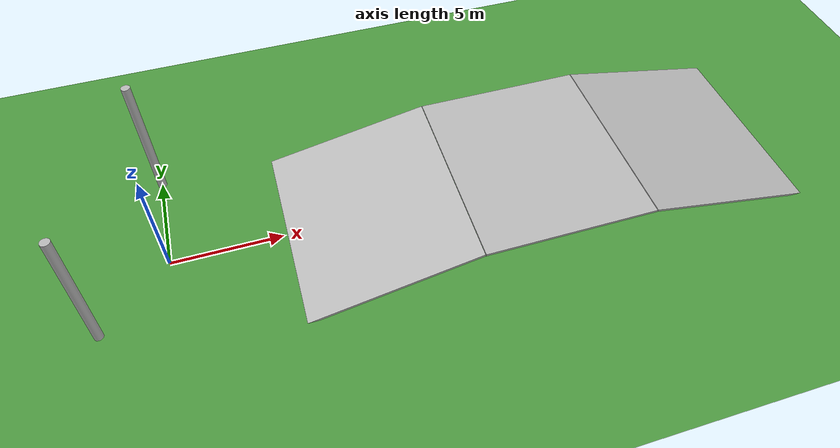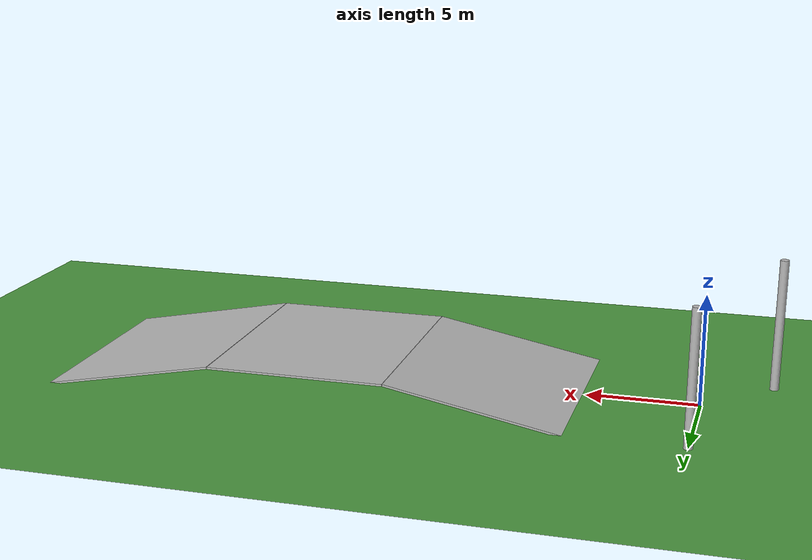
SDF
<sdf version="1.6">
 <world name="default">
  <light name="sun" type="directional">
   <pose>0 0 10 0 -0 0</pose>
   <diffuse>0.8 0.8 0.8 1</diffuse>
   <specular>0.2 0.2 0.2 1</specular>
   <attenuation>
    <range>1000</range>
    <constant>0.9</constant>
    <linear>0.01</linear>
    <quadratic>0.001</quadratic>
   </attenuation>
   <direction>-0.5 0.1 -0.9</direction>
  </light>
  <model name="ground_plane">
   <static>1</static>
   <link name="link">
    <collision name="collision">
     <geometry><plane><normal>0 0 1</normal><size>100 100</size></plane></geometry>
     <surface><friction><ode><mu>100</mu><mu2>50</mu2></ode></friction></surface>
    </collision>
    <visual name="visual">
     <cast_shadows>0</cast_shadows>
     <geometry><plane><normal>0 0 1</normal><size>100 100</size></plane></geometry>
     <material>
      <script><uri>model://materials/scripts</uri><uri>model://materials/textures</uri><name>grass</name></script>
     </material>
    </visual>
   </link>
  </model>
  <gravity>0 0 -9.8</gravity>
  <magnetic_field>6e-06 2.3e-05 -4.2e-05</magnetic_field>
  <atmosphere type="adiabatic"/>
  <physics name="default_physics" default="0" type="ode">
   <max_step_size>0.001</max_step_size>
   <real_time_factor>1</real_time_factor>
   <real_time_update_rate>1000</real_time_update_rate>
  </physics>
  <scene><ambient>0.4 0.4 0.4 1</ambient><background>0.7 0.7 0.7 1</background><shadows>1</shadows></scene>
  <audio><device>default</device></audio>
  <spherical_coordinates>
   <surface_model>EARTH_WGS84</surface_model>
   <latitude_deg>0</latitude_deg>
   <longitude_deg>0</longitude_deg>
   <elevation>0</elevation>
   <heading_deg>0</heading_deg>
  </spherical_coordinates>
  <model name="tree_1">
   <static>1</static>
   <pose>0 5 3 0 0 0</pose>
   <link name="link">
    <collision name="collision">
     <geometry><cylinder><radius>0.2</radius><length>6</length></cylinder></geometry>
     <surface><friction><ode><mu>0.6</mu><mu2>0.6</mu2></ode></friction></surface>
    </collision>
    <visual name="visual_1">
     <geometry><cylinder><radius>0.2</radius><length>6</length></cylinder></geometry>
     <material>
      <script><uri>model://materials/scripts</uri><uri>model://materials/textures</uri><name>bark</name></script>
     </material>
    </visual>
   </link>
  </model>
  <model name="tree_2">
   <static>1</static>
   <pose>-3 -3 3 0 0 0</pose>
   <link name="link">
    <collision name="collision">
     <geometry><cylinder><radius>0.2</radius><length>6</length></cylinder></geometry>
     <surface><friction><ode><mu>0.6</mu><mu2>0.6</mu2></ode></friction></surface>
    </collision>
    <visual name="visual_1">
     <geometry><cylinder><radius>0.2</radius><length>6</length></cylinder></geometry>
     <material>
      <script><uri>model://materials/scripts</uri><uri>model://materials/textures</uri><name>bark</name></script>
     </material>
    </visual>
   </link>
  </model>
  <model name="mud_box">
   <pose>9.0 0.0 0.65 0.0 -0.19 0.0</pose>
   <static>1</static>
   <link name="link">
    <collision name="collision">
     <geometry><box><size>8 10 0.1</size></box></geometry>
     <surface><friction><ode><mu>0.6</mu><mu2>0.6</mu2></ode></friction></surface>
    </collision>
    <visual name="visual_1">
     <geometry><box><size>8 10 0.1</size></box></geometry>
     <material>
      <script><uri>model://materials/scripts</uri><uri>model://materials/textures</uri><name>mud</name></script>
     </material>
    </visual>
   </link>
  </model>
  <model name="mud_box_2">
   <pose>16.95 0.0 1.4 0.0 0.0 0.0</pose>
   <static>1</static>
   <link name="link">
    <collision name="collision">
     <geometry><box><size>8 10 0.1</size></box></geometry>
     <surface><friction><ode><mu>0.6</mu><mu2>0.6</mu2></ode></friction></surface>
    </collision>
    <visual name="visual_1">
     <geometry><box><size>8 10 0.1</size></box></geometry>
     <material>
      <script><uri>model://materials/scripts</uri><uri>model://materials/textures</uri><name>mud</name></script>
     </material>
    </visual>
   </link>
  </model>
  <model name="mud_box_3">
   <pose>24.9 0.0 0.65 0.0 0.19 0.0</pose>
   <static>1</static>
   <link name="link">
    <collision name="collision">
     <geometry><box><size>8 10 0.1</size></box></geometry>
     <surface><friction><ode><mu>0.6</mu><mu2>0.6</mu2></ode></friction></surface>
    </collision>
    <visual name="visual_1">
     <geometry><box><size>8 10 0.1</size></box></geometry>
     <material>
      <script><uri>model://materials/scripts</uri><uri>model://materials/textures</uri><name>mud</name></script>
     </material>
    </visual>
   </link>
  </model>
 </world>
</sdf>
